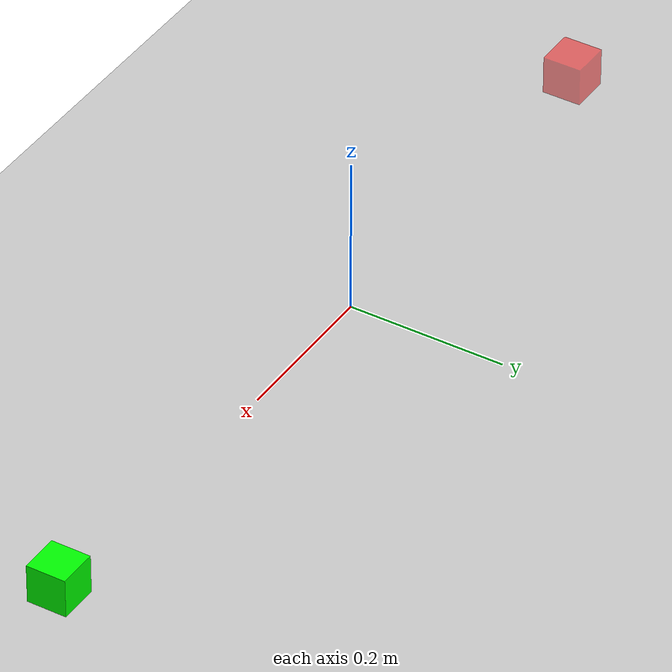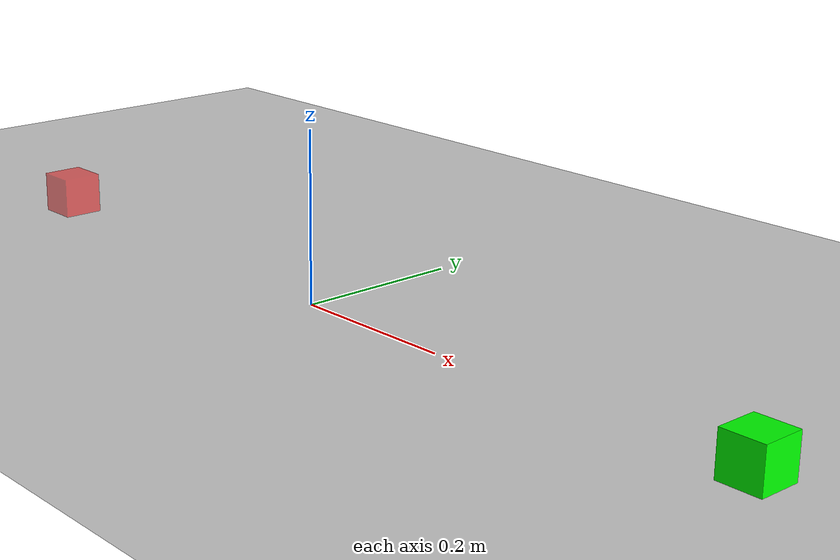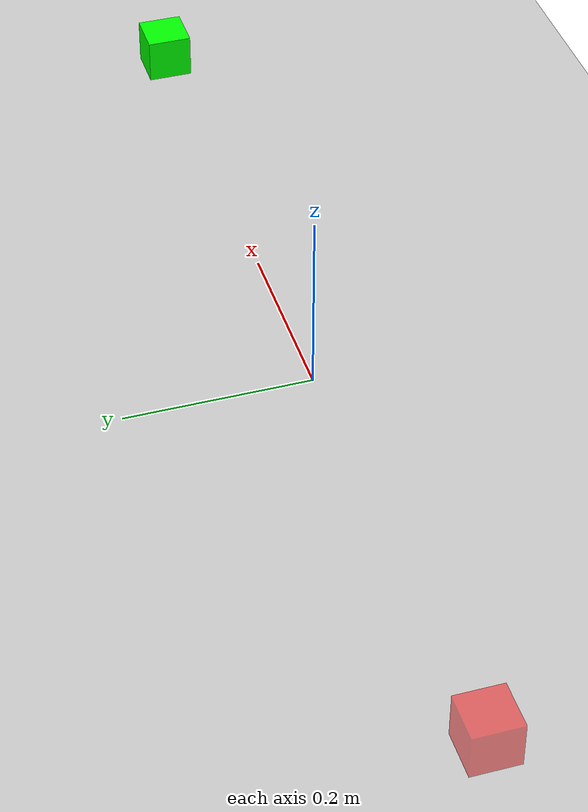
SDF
<?xml version="1.0" ?>
<sdf version="1.6">
  <world name="default">
    <!-- A global light source -->
    <light type="directional" name="sun">
      <cast_shadows>true</cast_shadows>
      <pose>0 0 10 0 0 0</pose>
      <diffuse>0.8 0.8 0.8 1</diffuse>
      <specular>0.2 0.2 0.2 1</specular>
      <attenuation>
        <range>1000</range>
        <constant>0.9</constant>
        <linear>0.01</linear>
        <quadratic>0.001</quadratic>
      </attenuation>
      <direction>-0.5 0.1 -0.9</direction>
    </light>

    <!-- Ground plane -->
    <model name="ground_plane">
      <static>true</static>
      <link name="link">
        <collision name="collision">
          <geometry>
            <plane>
              <normal>0 0 1</normal>
              <size>10 10</size>
            </plane>
          </geometry>
        </collision>
        <visual name="visual">
          <geometry>
            <plane>
              <normal>0 0 1</normal>
              <size>10 10</size>
            </plane>
          </geometry>
          <material>
            <ambient>0.8 0.8 0.8 1</ambient>
            <diffuse>0.8 0.8 0.8 1</diffuse>
            <specular>0.8 0.8 0.8 1</specular>
          </material>
        </visual>
      </link>
    </model>

    <!-- Object to pick (cube) - placed on ground -->
    <model name="pick_object">
      <pose>0.6 0.0 0.025 0 0 0</pose>
      <link name="link">
        <inertial>
          <mass>0.1</mass>
          <inertia>
            <ixx>0.001</ixx>
            <iyy>0.001</iyy>
            <izz>0.001</izz>
          </inertia>
        </inertial>
        <collision name="collision">
          <geometry>
            <box>
              <size>0.05 0.05 0.05</size>
            </box>
          </geometry>
        </collision>
        <visual name="visual">
          <geometry>
            <box>
              <size>0.05 0.05 0.05</size>
            </box>
          </geometry>
          <material>
            <ambient>0 1 0 1</ambient>
            <diffuse>0 1 0 1</diffuse>
            <specular>0.1 0.1 0.1 1</specular>
          </material>
        </visual>
      </link>
    </model>

    <!-- Place position marker (visual only) -->
    <model name="place_position">
      <static>true</static>
      <pose>-0.5 0.0 0.025 0 0 0</pose>
      <link name="link">
        <visual name="visual">
          <geometry>
            <box>
              <size>0.05 0.05 0.05</size>
            </box>
          </geometry>
          <material>
            <ambient>1 0 0 0.5</ambient>
            <diffuse>1 0 0 0.5</diffuse>
            <specular>0.1 0.1 0.1 1</specular>
          </material>
        </visual>
      </link>
    </model>

  </world>
</sdf>
